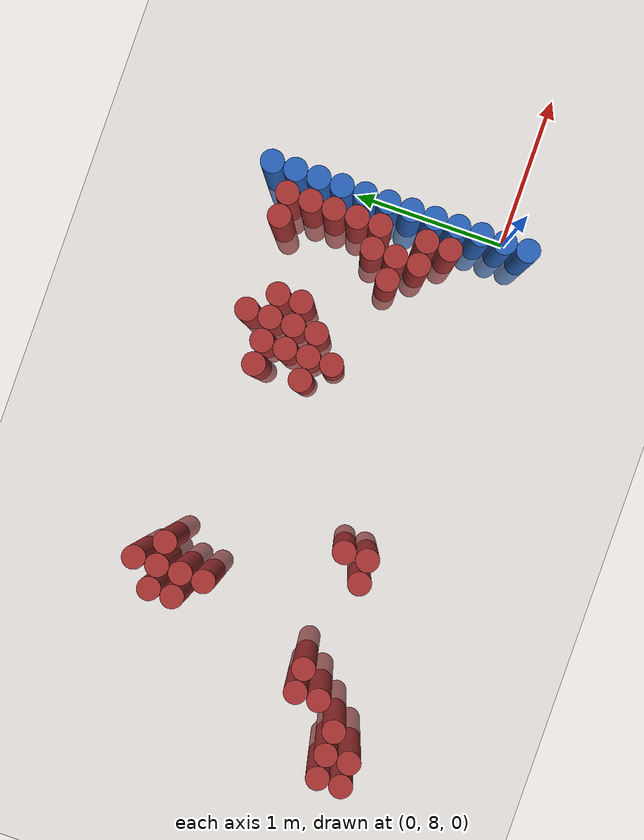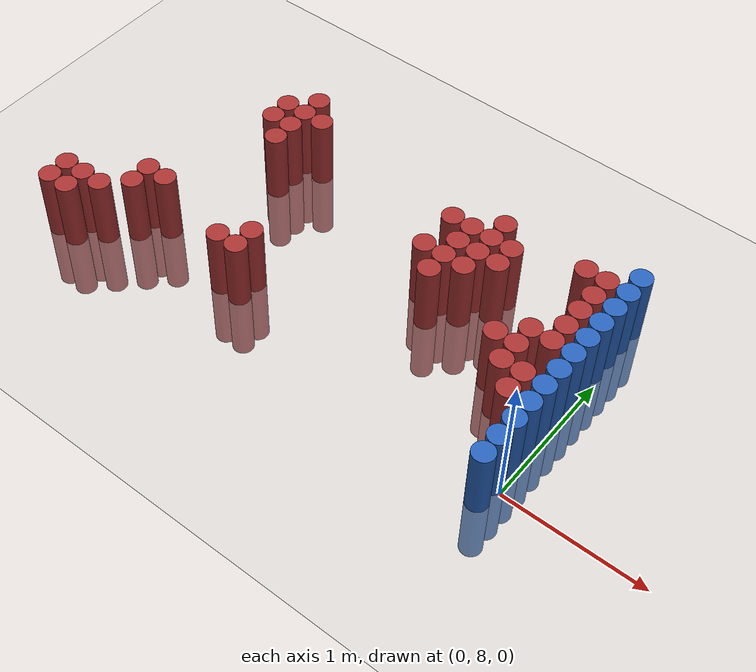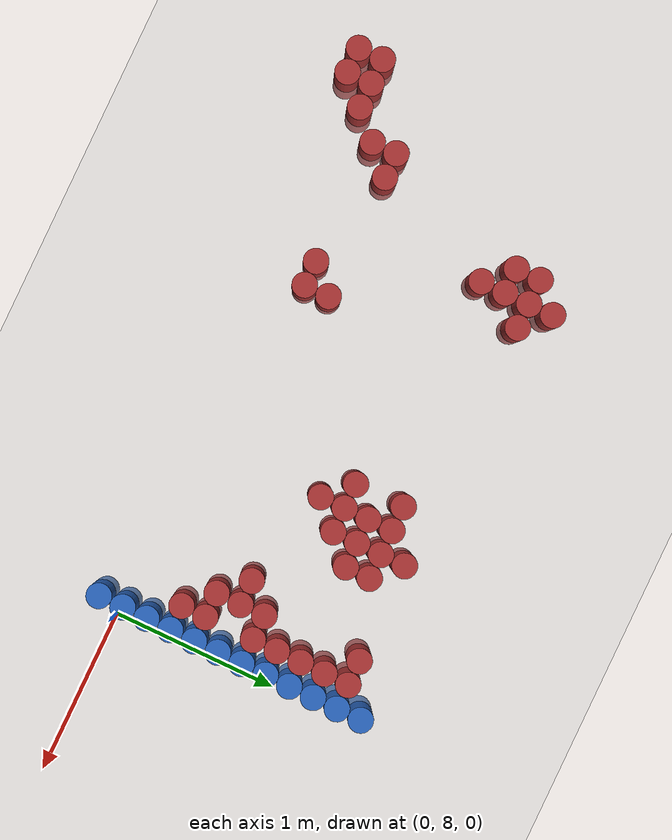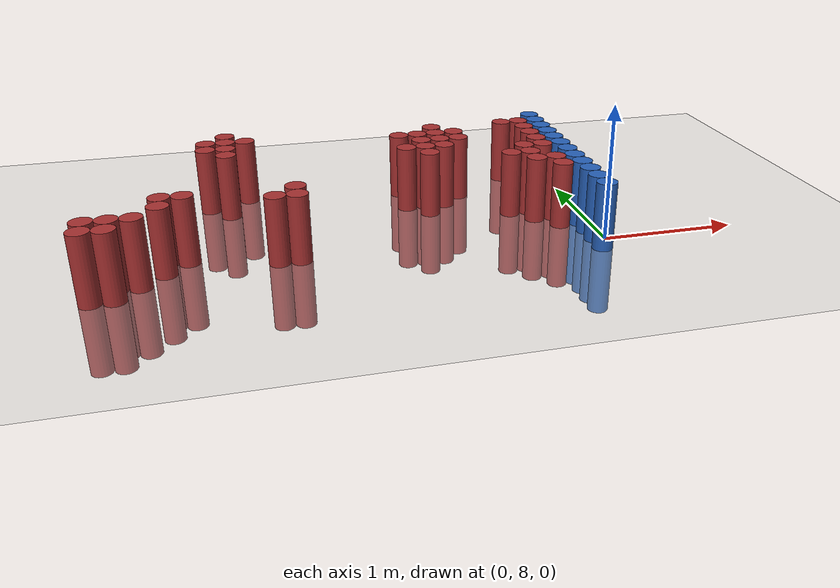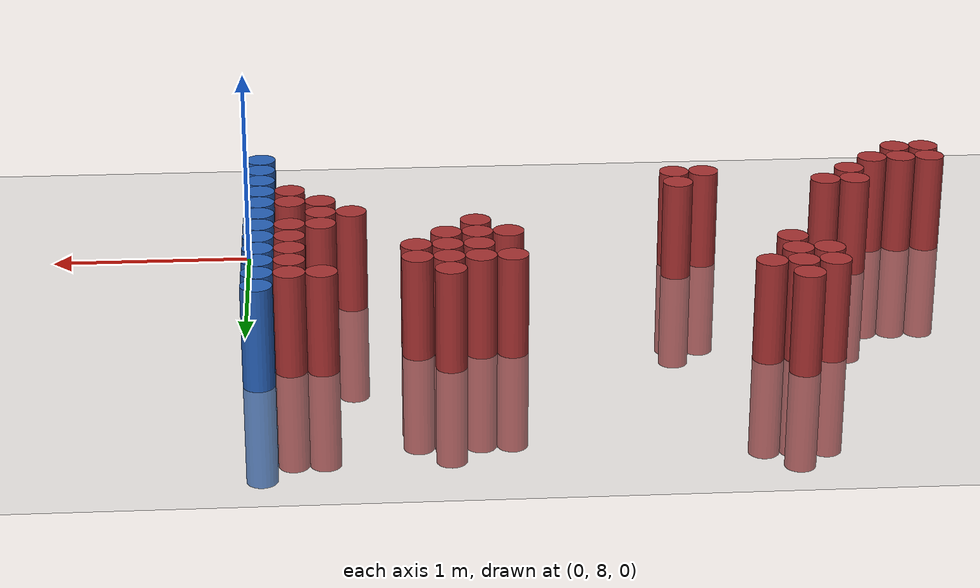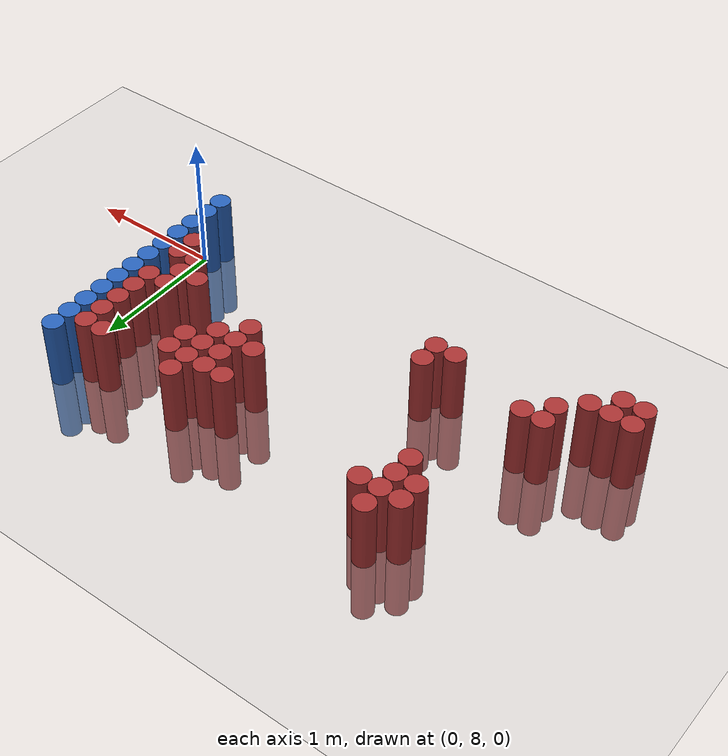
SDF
<sdf version="1.6">
 <world name="default">
  <model name="ground_plane">
   <static>1</static>
   <link name="link">
    <collision name="collision">
     <geometry><plane><normal>0 0 1</normal><size>100 100</size></plane></geometry>
     <surface><friction><ode><mu>100</mu><mu2>50</mu2></ode></friction></surface>
    </collision>
    <visual name="visual">
     <cast_shadows>0</cast_shadows>
     <geometry><plane><normal>0 0 1</normal><size>100 100</size></plane></geometry>
     <material>
      <script><uri>file://media/materials/scripts/gazebo.material</uri><name>Gazebo/Grey</name></script>
     </material>
    </visual>
   </link>
  </model>
  <model name="unit_cylinder_157">
   <static>1</static>
   <pose>-3.525000 7.875000 0.000000 0.000000 0.000000 0.000000</pose>
   <link name="link">
    <inertial>
     <mass>1</mass>
     <inertia><ixx>0.145833</ixx><ixy>0</ixy><ixz>0</ixz><iyy>0.145833</iyy><iyz>0</iyz><izz>0.125</izz></inertia>
    </inertial>
    <collision name="collision">
     <geometry><cylinder><radius>0.075000</radius><length>1</length></cylinder></geometry>
    </collision>
    <visual name="visual">
     <geometry><cylinder><radius>0.075000</radius><length>1</length></cylinder></geometry>
     <material>
      <ambient>0.648000 0.192000 0.192000 1</ambient>
      <diffuse>0.648000 0.192000 0.192000 1</diffuse>
     </material>
     <material>
      <script><name>Gazebo/Grey</name><uri>file://media/materials/scripts/gazebo.material</uri></script>
     </material>
    </visual>
   </link>
  </model>
  <model name="unit_cylinder_158">
   <static>1</static>
   <pose>-3.525000 8.025000 0.000000 0.000000 0.000000 0.000000</pose>
   <link name="link">
    <inertial>
     <mass>1</mass>
     <inertia><ixx>0.145833</ixx><ixy>0</ixy><ixz>0</ixz><iyy>0.145833</iyy><iyz>0</iyz><izz>0.125</izz></inertia>
    </inertial>
    <collision name="collision">
     <geometry><cylinder><radius>0.075000</radius><length>1</length></cylinder></geometry>
    </collision>
    <visual name="visual">
     <geometry><cylinder><radius>0.075000</radius><length>1</length></cylinder></geometry>
     <material>
      <ambient>0.648000 0.192000 0.192000 1</ambient>
      <diffuse>0.648000 0.192000 0.192000 1</diffuse>
     </material>
     <material>
      <script><name>Gazebo/Grey</name><uri>file://media/materials/scripts/gazebo.material</uri></script>
     </material>
    </visual>
   </link>
  </model>
  <model name="unit_cylinder_163">
   <static>1</static>
   <pose>-3.375000 7.875000 0.000000 0.000000 0.000000 0.000000</pose>
   <link name="link">
    <inertial>
     <mass>1</mass>
     <inertia><ixx>0.145833</ixx><ixy>0</ixy><ixz>0</ixz><iyy>0.145833</iyy><iyz>0</iyz><izz>0.125</izz></inertia>
    </inertial>
    <collision name="collision">
     <geometry><cylinder><radius>0.075000</radius><length>1</length></cylinder></geometry>
    </collision>
    <visual name="visual">
     <geometry><cylinder><radius>0.075000</radius><length>1</length></cylinder></geometry>
     <material>
      <ambient>0.648000 0.192000 0.192000 1</ambient>
      <diffuse>0.648000 0.192000 0.192000 1</diffuse>
     </material>
     <material>
      <script><name>Gazebo/Grey</name><uri>file://media/materials/scripts/gazebo.material</uri></script>
     </material>
    </visual>
   </link>
  </model>
  <model name="unit_cylinder_164">
   <static>1</static>
   <pose>-3.375000 8.025000 0.000000 0.000000 0.000000 0.000000</pose>
   <link name="link">
    <inertial>
     <mass>1</mass>
     <inertia><ixx>0.145833</ixx><ixy>0</ixy><ixz>0</ixz><iyy>0.145833</iyy><iyz>0</iyz><izz>0.125</izz></inertia>
    </inertial>
    <collision name="collision">
     <geometry><cylinder><radius>0.075000</radius><length>1</length></cylinder></geometry>
    </collision>
    <visual name="visual">
     <geometry><cylinder><radius>0.075000</radius><length>1</length></cylinder></geometry>
     <material>
      <ambient>0.648000 0.192000 0.192000 1</ambient>
      <diffuse>0.648000 0.192000 0.192000 1</diffuse>
     </material>
     <material>
      <script><name>Gazebo/Grey</name><uri>file://media/materials/scripts/gazebo.material</uri></script>
     </material>
    </visual>
   </link>
  </model>
  <model name="unit_cylinder_167">
   <static>1</static>
   <pose>-3.225000 8.025000 0.000000 0.000000 0.000000 0.000000</pose>
   <link name="link">
    <inertial>
     <mass>1</mass>
     <inertia><ixx>0.145833</ixx><ixy>0</ixy><ixz>0</ixz><iyy>0.145833</iyy><iyz>0</iyz><izz>0.125</izz></inertia>
    </inertial>
    <collision name="collision">
     <geometry><cylinder><radius>0.075000</radius><length>1</length></cylinder></geometry>
    </collision>
    <visual name="visual">
     <geometry><cylinder><radius>0.075000</radius><length>1</length></cylinder></geometry>
     <material>
      <ambient>0.648000 0.192000 0.192000 1</ambient>
      <diffuse>0.648000 0.192000 0.192000 1</diffuse>
     </material>
     <material>
      <script><name>Gazebo/Grey</name><uri>file://media/materials/scripts/gazebo.material</uri></script>
     </material>
    </visual>
   </link>
  </model>
  <model name="unit_cylinder_171">
   <static>1</static>
   <pose>-3.075000 8.175000 0.000000 0.000000 0.000000 0.000000</pose>
   <link name="link">
    <inertial>
     <mass>1</mass>
     <inertia><ixx>0.145833</ixx><ixy>0</ixy><ixz>0</ixz><iyy>0.145833</iyy><iyz>0</iyz><izz>0.125</izz></inertia>
    </inertial>
    <collision name="collision">
     <geometry><cylinder><radius>0.075000</radius><length>1</length></cylinder></geometry>
    </collision>
    <visual name="visual">
     <geometry><cylinder><radius>0.075000</radius><length>1</length></cylinder></geometry>
     <material>
      <ambient>0.648000 0.192000 0.192000 1</ambient>
      <diffuse>0.648000 0.192000 0.192000 1</diffuse>
     </material>
     <material>
      <script><name>Gazebo/Grey</name><uri>file://media/materials/scripts/gazebo.material</uri></script>
     </material>
    </visual>
   </link>
  </model>
  <model name="unit_cylinder_172">
   <static>1</static>
   <pose>-3.075000 8.325000 0.000000 0.000000 0.000000 0.000000</pose>
   <link name="link">
    <inertial>
     <mass>1</mass>
     <inertia><ixx>0.145833</ixx><ixy>0</ixy><ixz>0</ixz><iyy>0.145833</iyy><iyz>0</iyz><izz>0.125</izz></inertia>
    </inertial>
    <collision name="collision">
     <geometry><cylinder><radius>0.075000</radius><length>1</length></cylinder></geometry>
    </collision>
    <visual name="visual">
     <geometry><cylinder><radius>0.075000</radius><length>1</length></cylinder></geometry>
     <material>
      <ambient>0.648000 0.192000 0.192000 1</ambient>
      <diffuse>0.648000 0.192000 0.192000 1</diffuse>
     </material>
     <material>
      <script><name>Gazebo/Grey</name><uri>file://media/materials/scripts/gazebo.material</uri></script>
     </material>
    </visual>
   </link>
  </model>
  <model name="unit_cylinder_175">
   <static>1</static>
   <pose>-2.925000 8.325000 0.000000 0.000000 0.000000 0.000000</pose>
   <link name="link">
    <inertial>
     <mass>1</mass>
     <inertia><ixx>0.145833</ixx><ixy>0</ixy><ixz>0</ixz><iyy>0.145833</iyy><iyz>0</iyz><izz>0.125</izz></inertia>
    </inertial>
    <collision name="collision">
     <geometry><cylinder><radius>0.075000</radius><length>1</length></cylinder></geometry>
    </collision>
    <visual name="visual">
     <geometry><cylinder><radius>0.075000</radius><length>1</length></cylinder></geometry>
     <material>
      <ambient>0.648000 0.192000 0.192000 1</ambient>
      <diffuse>0.648000 0.192000 0.192000 1</diffuse>
     </material>
     <material>
      <script><name>Gazebo/Grey</name><uri>file://media/materials/scripts/gazebo.material</uri></script>
     </material>
    </visual>
   </link>
  </model>
  <model name="unit_cylinder_180">
   <static>1</static>
   <pose>-2.775000 9.225000 0.000000 0.000000 0.000000 0.000000</pose>
   <link name="link">
    <inertial>
     <mass>1</mass>
     <inertia><ixx>0.145833</ixx><ixy>0</ixy><ixz>0</ixz><iyy>0.145833</iyy><iyz>0</iyz><izz>0.125</izz></inertia>
    </inertial>
    <collision name="collision">
     <geometry><cylinder><radius>0.075000</radius><length>1</length></cylinder></geometry>
    </collision>
    <visual name="visual">
     <geometry><cylinder><radius>0.075000</radius><length>1</length></cylinder></geometry>
     <material>
      <ambient>0.648000 0.192000 0.192000 1</ambient>
      <diffuse>0.648000 0.192000 0.192000 1</diffuse>
     </material>
     <material>
      <script><name>Gazebo/Grey</name><uri>file://media/materials/scripts/gazebo.material</uri></script>
     </material>
    </visual>
   </link>
  </model>
  <model name="unit_cylinder_181">
   <static>1</static>
   <pose>-2.775000 9.375000 0.000000 0.000000 0.000000 0.000000</pose>
   <link name="link">
    <inertial>
     <mass>1</mass>
     <inertia><ixx>0.145833</ixx><ixy>0</ixy><ixz>0</ixz><iyy>0.145833</iyy><iyz>0</iyz><izz>0.125</izz></inertia>
    </inertial>
    <collision name="collision">
     <geometry><cylinder><radius>0.075000</radius><length>1</length></cylinder></geometry>
    </collision>
    <visual name="visual">
     <geometry><cylinder><radius>0.075000</radius><length>1</length></cylinder></geometry>
     <material>
      <ambient>0.648000 0.192000 0.192000 1</ambient>
      <diffuse>0.648000 0.192000 0.192000 1</diffuse>
     </material>
     <material>
      <script><name>Gazebo/Grey</name><uri>file://media/materials/scripts/gazebo.material</uri></script>
     </material>
    </visual>
   </link>
  </model>
  <model name="unit_cylinder_187">
   <static>1</static>
   <pose>-2.625000 9.075000 0.000000 0.000000 0.000000 0.000000</pose>
   <link name="link">
    <inertial>
     <mass>1</mass>
     <inertia><ixx>0.145833</ixx><ixy>0</ixy><ixz>0</ixz><iyy>0.145833</iyy><iyz>0</iyz><izz>0.125</izz></inertia>
    </inertial>
    <collision name="collision">
     <geometry><cylinder><radius>0.075000</radius><length>1</length></cylinder></geometry>
    </collision>
    <visual name="visual">
     <geometry><cylinder><radius>0.075000</radius><length>1</length></cylinder></geometry>
     <material>
      <ambient>0.648000 0.192000 0.192000 1</ambient>
      <diffuse>0.648000 0.192000 0.192000 1</diffuse>
     </material>
     <material>
      <script><name>Gazebo/Grey</name><uri>file://media/materials/scripts/gazebo.material</uri></script>
     </material>
    </visual>
   </link>
  </model>
  <model name="unit_cylinder_188">
   <static>1</static>
   <pose>-2.625000 9.225000 0.000000 0.000000 0.000000 0.000000</pose>
   <link name="link">
    <inertial>
     <mass>1</mass>
     <inertia><ixx>0.145833</ixx><ixy>0</ixy><ixz>0</ixz><iyy>0.145833</iyy><iyz>0</iyz><izz>0.125</izz></inertia>
    </inertial>
    <collision name="collision">
     <geometry><cylinder><radius>0.075000</radius><length>1</length></cylinder></geometry>
    </collision>
    <visual name="visual">
     <geometry><cylinder><radius>0.075000</radius><length>1</length></cylinder></geometry>
     <material>
      <ambient>0.648000 0.192000 0.192000 1</ambient>
      <diffuse>0.648000 0.192000 0.192000 1</diffuse>
     </material>
     <material>
      <script><name>Gazebo/Grey</name><uri>file://media/materials/scripts/gazebo.material</uri></script>
     </material>
    </visual>
   </link>
  </model>
  <model name="unit_cylinder_189">
   <static>1</static>
   <pose>-2.625000 9.375000 0.000000 0.000000 0.000000 0.000000</pose>
   <link name="link">
    <inertial>
     <mass>1</mass>
     <inertia><ixx>0.145833</ixx><ixy>0</ixy><ixz>0</ixz><iyy>0.145833</iyy><iyz>0</iyz><izz>0.125</izz></inertia>
    </inertial>
    <collision name="collision">
     <geometry><cylinder><radius>0.075000</radius><length>1</length></cylinder></geometry>
    </collision>
    <visual name="visual">
     <geometry><cylinder><radius>0.075000</radius><length>1</length></cylinder></geometry>
     <material>
      <ambient>0.648000 0.192000 0.192000 1</ambient>
      <diffuse>0.648000 0.192000 0.192000 1</diffuse>
     </material>
     <material>
      <script><name>Gazebo/Grey</name><uri>file://media/materials/scripts/gazebo.material</uri></script>
     </material>
    </visual>
   </link>
  </model>
  <model name="unit_cylinder_190">
   <static>1</static>
   <pose>-2.625000 9.525000 0.000000 0.000000 0.000000 0.000000</pose>
   <link name="link">
    <inertial>
     <mass>1</mass>
     <inertia><ixx>0.145833</ixx><ixy>0</ixy><ixz>0</ixz><iyy>0.145833</iyy><iyz>0</iyz><izz>0.125</izz></inertia>
    </inertial>
    <collision name="collision">
     <geometry><cylinder><radius>0.075000</radius><length>1</length></cylinder></geometry>
    </collision>
    <visual name="visual">
     <geometry><cylinder><radius>0.075000</radius><length>1</length></cylinder></geometry>
     <material>
      <ambient>0.648000 0.192000 0.192000 1</ambient>
      <diffuse>0.648000 0.192000 0.192000 1</diffuse>
     </material>
     <material>
      <script><name>Gazebo/Grey</name><uri>file://media/materials/scripts/gazebo.material</uri></script>
     </material>
    </visual>
   </link>
  </model>
  <model name="unit_cylinder_195">
   <static>1</static>
   <pose>-2.475000 9.375000 0.000000 0.000000 0.000000 0.000000</pose>
   <link name="link">
    <inertial>
     <mass>1</mass>
     <inertia><ixx>0.145833</ixx><ixy>0</ixy><ixz>0</ixz><iyy>0.145833</iyy><iyz>0</iyz><izz>0.125</izz></inertia>
    </inertial>
    <collision name="collision">
     <geometry><cylinder><radius>0.075000</radius><length>1</length></cylinder></geometry>
    </collision>
    <visual name="visual">
     <geometry><cylinder><radius>0.075000</radius><length>1</length></cylinder></geometry>
     <material>
      <ambient>0.648000 0.192000 0.192000 1</ambient>
      <diffuse>0.648000 0.192000 0.192000 1</diffuse>
     </material>
     <material>
      <script><name>Gazebo/Grey</name><uri>file://media/materials/scripts/gazebo.material</uri></script>
     </material>
    </visual>
   </link>
  </model>
  <model name="unit_cylinder_197">
   <static>1</static>
   <pose>-2.325000 8.175000 0.000000 0.000000 0.000000 0.000000</pose>
   <link name="link">
    <inertial>
     <mass>1</mass>
     <inertia><ixx>0.145833</ixx><ixy>0</ixy><ixz>0</ixz><iyy>0.145833</iyy><iyz>0</iyz><izz>0.125</izz></inertia>
    </inertial>
    <collision name="collision">
     <geometry><cylinder><radius>0.075000</radius><length>1</length></cylinder></geometry>
    </collision>
    <visual name="visual">
     <geometry><cylinder><radius>0.075000</radius><length>1</length></cylinder></geometry>
     <material>
      <ambient>0.648000 0.192000 0.192000 1</ambient>
      <diffuse>0.648000 0.192000 0.192000 1</diffuse>
     </material>
     <material>
      <script><name>Gazebo/Grey</name><uri>file://media/materials/scripts/gazebo.material</uri></script>
     </material>
    </visual>
   </link>
  </model>
  <model name="unit_cylinder_198">
   <static>1</static>
   <pose>-2.175000 8.175000 0.000000 0.000000 0.000000 0.000000</pose>
   <link name="link">
    <inertial>
     <mass>1</mass>
     <inertia><ixx>0.145833</ixx><ixy>0</ixy><ixz>0</ixz><iyy>0.145833</iyy><iyz>0</iyz><izz>0.125</izz></inertia>
    </inertial>
    <collision name="collision">
     <geometry><cylinder><radius>0.075000</radius><length>1</length></cylinder></geometry>
    </collision>
    <visual name="visual">
     <geometry><cylinder><radius>0.075000</radius><length>1</length></cylinder></geometry>
     <material>
      <ambient>0.648000 0.192000 0.192000 1</ambient>
      <diffuse>0.648000 0.192000 0.192000 1</diffuse>
     </material>
     <material>
      <script><name>Gazebo/Grey</name><uri>file://media/materials/scripts/gazebo.material</uri></script>
     </material>
    </visual>
   </link>
  </model>
  <model name="unit_cylinder_199">
   <static>1</static>
   <pose>-2.175000 8.325000 0.000000 0.000000 0.000000 0.000000</pose>
   <link name="link">
    <inertial>
     <mass>1</mass>
     <inertia><ixx>0.145833</ixx><ixy>0</ixy><ixz>0</ixz><iyy>0.145833</iyy><iyz>0</iyz><izz>0.125</izz></inertia>
    </inertial>
    <collision name="collision">
     <geometry><cylinder><radius>0.075000</radius><length>1</length></cylinder></geometry>
    </collision>
    <visual name="visual">
     <geometry><cylinder><radius>0.075000</radius><length>1</length></cylinder></geometry>
     <material>
      <ambient>0.648000 0.192000 0.192000 1</ambient>
      <diffuse>0.648000 0.192000 0.192000 1</diffuse>
     </material>
     <material>
      <script><name>Gazebo/Grey</name><uri>file://media/materials/scripts/gazebo.material</uri></script>
     </material>
    </visual>
   </link>
  </model>
  <model name="unit_cylinder_208">
   <static>1</static>
   <pose>-1.275000 8.925000 0.000000 0.000000 0.000000 0.000000</pose>
   <link name="link">
    <inertial>
     <mass>1</mass>
     <inertia><ixx>0.145833</ixx><ixy>0</ixy><ixz>0</ixz><iyy>0.145833</iyy><iyz>0</iyz><izz>0.125</izz></inertia>
    </inertial>
    <collision name="collision">
     <geometry><cylinder><radius>0.075000</radius><length>1</length></cylinder></geometry>
    </collision>
    <visual name="visual">
     <geometry><cylinder><radius>0.075000</radius><length>1</length></cylinder></geometry>
     <material>
      <ambient>0.648000 0.192000 0.192000 1</ambient>
      <diffuse>0.648000 0.192000 0.192000 1</diffuse>
     </material>
     <material>
      <script><name>Gazebo/Grey</name><uri>file://media/materials/scripts/gazebo.material</uri></script>
     </material>
    </visual>
   </link>
  </model>
  <model name="unit_cylinder_209">
   <static>1</static>
   <pose>-1.275000 9.225000 0.000000 0.000000 0.000000 0.000000</pose>
   <link name="link">
    <inertial>
     <mass>1</mass>
     <inertia><ixx>0.145833</ixx><ixy>0</ixy><ixz>0</ixz><iyy>0.145833</iyy><iyz>0</iyz><izz>0.125</izz></inertia>
    </inertial>
    <collision name="collision">
     <geometry><cylinder><radius>0.075000</radius><length>1</length></cylinder></geometry>
    </collision>
    <visual name="visual">
     <geometry><cylinder><radius>0.075000</radius><length>1</length></cylinder></geometry>
     <material>
      <ambient>0.648000 0.192000 0.192000 1</ambient>
      <diffuse>0.648000 0.192000 0.192000 1</diffuse>
     </material>
     <material>
      <script><name>Gazebo/Grey</name><uri>file://media/materials/scripts/gazebo.material</uri></script>
     </material>
    </visual>
   </link>
  </model>
  <model name="unit_cylinder_210">
   <static>1</static>
   <pose>-1.125000 8.775000 0.000000 0.000000 0.000000 0.000000</pose>
   <link name="link">
    <inertial>
     <mass>1</mass>
     <inertia><ixx>0.145833</ixx><ixy>0</ixy><ixz>0</ixz><iyy>0.145833</iyy><iyz>0</iyz><izz>0.125</izz></inertia>
    </inertial>
    <collision name="collision">
     <geometry><cylinder><radius>0.075000</radius><length>1</length></cylinder></geometry>
    </collision>
    <visual name="visual">
     <geometry><cylinder><radius>0.075000</radius><length>1</length></cylinder></geometry>
     <material>
      <ambient>0.648000 0.192000 0.192000 1</ambient>
      <diffuse>0.648000 0.192000 0.192000 1</diffuse>
     </material>
     <material>
      <script><name>Gazebo/Grey</name><uri>file://media/materials/scripts/gazebo.material</uri></script>
     </material>
    </visual>
   </link>
  </model>
  <model name="unit_cylinder_211">
   <static>1</static>
   <pose>-1.125000 8.925000 0.000000 0.000000 0.000000 0.000000</pose>
   <link name="link">
    <inertial>
     <mass>1</mass>
     <inertia><ixx>0.145833</ixx><ixy>0</ixy><ixz>0</ixz><iyy>0.145833</iyy><iyz>0</iyz><izz>0.125</izz></inertia>
    </inertial>
    <collision name="collision">
     <geometry><cylinder><radius>0.075000</radius><length>1</length></cylinder></geometry>
    </collision>
    <visual name="visual">
     <geometry><cylinder><radius>0.075000</radius><length>1</length></cylinder></geometry>
     <material>
      <ambient>0.648000 0.192000 0.192000 1</ambient>
      <diffuse>0.648000 0.192000 0.192000 1</diffuse>
     </material>
     <material>
      <script><name>Gazebo/Grey</name><uri>file://media/materials/scripts/gazebo.material</uri></script>
     </material>
    </visual>
   </link>
  </model>
  <model name="unit_cylinder_212">
   <static>1</static>
   <pose>-1.125000 9.075000 0.000000 0.000000 0.000000 0.000000</pose>
   <link name="link">
    <inertial>
     <mass>1</mass>
     <inertia><ixx>0.145833</ixx><ixy>0</ixy><ixz>0</ixz><iyy>0.145833</iyy><iyz>0</iyz><izz>0.125</izz></inertia>
    </inertial>
    <collision name="collision">
     <geometry><cylinder><radius>0.075000</radius><length>1</length></cylinder></geometry>
    </collision>
    <visual name="visual">
     <geometry><cylinder><radius>0.075000</radius><length>1</length></cylinder></geometry>
     <material>
      <ambient>0.648000 0.192000 0.192000 1</ambient>
      <diffuse>0.648000 0.192000 0.192000 1</diffuse>
     </material>
     <material>
      <script><name>Gazebo/Grey</name><uri>file://media/materials/scripts/gazebo.material</uri></script>
     </material>
    </visual>
   </link>
  </model>
  <model name="unit_cylinder_213">
   <static>1</static>
   <pose>-1.125000 9.225000 0.000000 0.000000 0.000000 0.000000</pose>
   <link name="link">
    <inertial>
     <mass>1</mass>
     <inertia><ixx>0.145833</ixx><ixy>0</ixy><ixz>0</ixz><iyy>0.145833</iyy><iyz>0</iyz><izz>0.125</izz></inertia>
    </inertial>
    <collision name="collision">
     <geometry><cylinder><radius>0.075000</radius><length>1</length></cylinder></geometry>
    </collision>
    <visual name="visual">
     <geometry><cylinder><radius>0.075000</radius><length>1</length></cylinder></geometry>
     <material>
      <ambient>0.648000 0.192000 0.192000 1</ambient>
      <diffuse>0.648000 0.192000 0.192000 1</diffuse>
     </material>
     <material>
      <script><name>Gazebo/Grey</name><uri>file://media/materials/scripts/gazebo.material</uri></script>
     </material>
    </visual>
   </link>
  </model>
  <model name="unit_cylinder_215">
   <static>1</static>
   <pose>-0.975000 8.925000 0.000000 0.000000 0.000000 0.000000</pose>
   <link name="link">
    <inertial>
     <mass>1</mass>
     <inertia><ixx>0.145833</ixx><ixy>0</ixy><ixz>0</ixz><iyy>0.145833</iyy><iyz>0</iyz><izz>0.125</izz></inertia>
    </inertial>
    <collision name="collision">
     <geometry><cylinder><radius>0.075000</radius><length>1</length></cylinder></geometry>
    </collision>
    <visual name="visual">
     <geometry><cylinder><radius>0.075000</radius><length>1</length></cylinder></geometry>
     <material>
      <ambient>0.648000 0.192000 0.192000 1</ambient>
      <diffuse>0.648000 0.192000 0.192000 1</diffuse>
     </material>
     <material>
      <script><name>Gazebo/Grey</name><uri>file://media/materials/scripts/gazebo.material</uri></script>
     </material>
    </visual>
   </link>
  </model>
  <model name="unit_cylinder_216">
   <static>1</static>
   <pose>-0.975000 9.075000 0.000000 0.000000 0.000000 0.000000</pose>
   <link name="link">
    <inertial>
     <mass>1</mass>
     <inertia><ixx>0.145833</ixx><ixy>0</ixy><ixz>0</ixz><iyy>0.145833</iyy><iyz>0</iyz><izz>0.125</izz></inertia>
    </inertial>
    <collision name="collision">
     <geometry><cylinder><radius>0.075000</radius><length>1</length></cylinder></geometry>
    </collision>
    <visual name="visual">
     <geometry><cylinder><radius>0.075000</radius><length>1</length></cylinder></geometry>
     <material>
      <ambient>0.648000 0.192000 0.192000 1</ambient>
      <diffuse>0.648000 0.192000 0.192000 1</diffuse>
     </material>
     <material>
      <script><name>Gazebo/Grey</name><uri>file://media/materials/scripts/gazebo.material</uri></script>
     </material>
    </visual>
   </link>
  </model>
  <model name="unit_cylinder_217">
   <static>1</static>
   <pose>-0.975000 9.225000 0.000000 0.000000 0.000000 0.000000</pose>
   <link name="link">
    <inertial>
     <mass>1</mass>
     <inertia><ixx>0.145833</ixx><ixy>0</ixy><ixz>0</ixz><iyy>0.145833</iyy><iyz>0</iyz><izz>0.125</izz></inertia>
    </inertial>
    <collision name="collision">
     <geometry><cylinder><radius>0.075000</radius><length>1</length></cylinder></geometry>
    </collision>
    <visual name="visual">
     <geometry><cylinder><radius>0.075000</radius><length>1</length></cylinder></geometry>
     <material>
      <ambient>0.648000 0.192000 0.192000 1</ambient>
      <diffuse>0.648000 0.192000 0.192000 1</diffuse>
     </material>
     <material>
      <script><name>Gazebo/Grey</name><uri>file://media/materials/scripts/gazebo.material</uri></script>
     </material>
    </visual>
   </link>
  </model>
  <model name="unit_cylinder_218">
   <static>1</static>
   <pose>-0.975000 9.375000 0.000000 0.000000 0.000000 0.000000</pose>
   <link name="link">
    <inertial>
     <mass>1</mass>
     <inertia><ixx>0.145833</ixx><ixy>0</ixy><ixz>0</ixz><iyy>0.145833</iyy><iyz>0</iyz><izz>0.125</izz></inertia>
    </inertial>
    <collision name="collision">
     <geometry><cylinder><radius>0.075000</radius><length>1</length></cylinder></geometry>
    </collision>
    <visual name="visual">
     <geometry><cylinder><radius>0.075000</radius><length>1</length></cylinder></geometry>
     <material>
      <ambient>0.648000 0.192000 0.192000 1</ambient>
      <diffuse>0.648000 0.192000 0.192000 1</diffuse>
     </material>
     <material>
      <script><name>Gazebo/Grey</name><uri>file://media/materials/scripts/gazebo.material</uri></script>
     </material>
    </visual>
   </link>
  </model>
  <model name="unit_cylinder_220">
   <static>1</static>
   <pose>-0.825000 9.075000 0.000000 0.000000 0.000000 0.000000</pose>
   <link name="link">
    <inertial>
     <mass>1</mass>
     <inertia><ixx>0.145833</ixx><ixy>0</ixy><ixz>0</ixz><iyy>0.145833</iyy><iyz>0</iyz><izz>0.125</izz></inertia>
    </inertial>
    <collision name="collision">
     <geometry><cylinder><radius>0.075000</radius><length>1</length></cylinder></geometry>
    </collision>
    <visual name="visual">
     <geometry><cylinder><radius>0.075000</radius><length>1</length></cylinder></geometry>
     <material>
      <ambient>0.648000 0.192000 0.192000 1</ambient>
      <diffuse>0.648000 0.192000 0.192000 1</diffuse>
     </material>
     <material>
      <script><name>Gazebo/Grey</name><uri>file://media/materials/scripts/gazebo.material</uri></script>
     </material>
    </visual>
   </link>
  </model>
  <model name="unit_cylinder_221">
   <static>1</static>
   <pose>-0.825000 9.225000 0.000000 0.000000 0.000000 0.000000</pose>
   <link name="link">
    <inertial>
     <mass>1</mass>
     <inertia><ixx>0.145833</ixx><ixy>0</ixy><ixz>0</ixz><iyy>0.145833</iyy><iyz>0</iyz><izz>0.125</izz></inertia>
    </inertial>
    <collision name="collision">
     <geometry><cylinder><radius>0.075000</radius><length>1</length></cylinder></geometry>
    </collision>
    <visual name="visual">
     <geometry><cylinder><radius>0.075000</radius><length>1</length></cylinder></geometry>
     <material>
      <ambient>0.648000 0.192000 0.192000 1</ambient>
      <diffuse>0.648000 0.192000 0.192000 1</diffuse>
     </material>
     <material>
      <script><name>Gazebo/Grey</name><uri>file://media/materials/scripts/gazebo.material</uri></script>
     </material>
    </visual>
   </link>
  </model>
  <model name="unit_cylinder_222">
   <static>1</static>
   <pose>-0.525000 8.625000 0.000000 0.000000 0.000000 0.000000</pose>
   <link name="link">
    <inertial>
     <mass>1</mass>
     <inertia><ixx>0.145833</ixx><ixy>0</ixy><ixz>0</ixz><iyy>0.145833</iyy><iyz>0</iyz><izz>0.125</izz></inertia>
    </inertial>
    <collision name="collision">
     <geometry><cylinder><radius>0.075000</radius><length>1</length></cylinder></geometry>
    </collision>
    <visual name="visual">
     <geometry><cylinder><radius>0.075000</radius><length>1</length></cylinder></geometry>
     <material>
      <ambient>0.648000 0.192000 0.192000 1</ambient>
      <diffuse>0.648000 0.192000 0.192000 1</diffuse>
     </material>
     <material>
      <script><name>Gazebo/Grey</name><uri>file://media/materials/scripts/gazebo.material</uri></script>
     </material>
    </visual>
   </link>
  </model>
  <model name="unit_cylinder_223">
   <static>1</static>
   <pose>-0.375000 8.475000 0.000000 0.000000 0.000000 0.000000</pose>
   <link name="link">
    <inertial>
     <mass>1</mass>
     <inertia><ixx>0.145833</ixx><ixy>0</ixy><ixz>0</ixz><iyy>0.145833</iyy><iyz>0</iyz><izz>0.125</izz></inertia>
    </inertial>
    <collision name="collision">
     <geometry><cylinder><radius>0.075000</radius><length>1</length></cylinder></geometry>
    </collision>
    <visual name="visual">
     <geometry><cylinder><radius>0.075000</radius><length>1</length></cylinder></geometry>
     <material>
      <ambient>0.648000 0.192000 0.192000 1</ambient>
      <diffuse>0.648000 0.192000 0.192000 1</diffuse>
     </material>
     <material>
      <script><name>Gazebo/Grey</name><uri>file://media/materials/scripts/gazebo.material</uri></script>
     </material>
    </visual>
   </link>
  </model>
  <model name="unit_cylinder_224">
   <static>1</static>
   <pose>-0.375000 8.625000 0.000000 0.000000 0.000000 0.000000</pose>
   <link name="link">
    <inertial>
     <mass>1</mass>
     <inertia><ixx>0.145833</ixx><ixy>0</ixy><ixz>0</ixz><iyy>0.145833</iyy><iyz>0</iyz><izz>0.125</izz></inertia>
    </inertial>
    <collision name="collision">
     <geometry><cylinder><radius>0.075000</radius><length>1</length></cylinder></geometry>
    </collision>
    <visual name="visual">
     <geometry><cylinder><radius>0.075000</radius><length>1</length></cylinder></geometry>
     <material>
      <ambient>0.648000 0.192000 0.192000 1</ambient>
      <diffuse>0.648000 0.192000 0.192000 1</diffuse>
     </material>
     <material>
      <script><name>Gazebo/Grey</name><uri>file://media/materials/scripts/gazebo.material</uri></script>
     </material>
    </visual>
   </link>
  </model>
  <model name="unit_cylinder_225">
   <static>1</static>
   <pose>-0.375000 8.775000 0.000000 0.000000 0.000000 0.000000</pose>
   <link name="link">
    <inertial>
     <mass>1</mass>
     <inertia><ixx>0.145833</ixx><ixy>0</ixy><ixz>0</ixz><iyy>0.145833</iyy><iyz>0</iyz><izz>0.125</izz></inertia>
    </inertial>
    <collision name="collision">
     <geometry><cylinder><radius>0.075000</radius><length>1</length></cylinder></geometry>
    </collision>
    <visual name="visual">
     <geometry><cylinder><radius>0.075000</radius><length>1</length></cylinder></geometry>
     <material>
      <ambient>0.648000 0.192000 0.192000 1</ambient>
      <diffuse>0.648000 0.192000 0.192000 1</diffuse>
     </material>
     <material>
      <script><name>Gazebo/Grey</name><uri>file://media/materials/scripts/gazebo.material</uri></script>
     </material>
    </visual>
   </link>
  </model>
  <model name="unit_cylinder_226">
   <static>1</static>
   <pose>-0.375000 9.375000 0.000000 0.000000 0.000000 0.000000</pose>
   <link name="link">
    <inertial>
     <mass>1</mass>
     <inertia><ixx>0.145833</ixx><ixy>0</ixy><ixz>0</ixz><iyy>0.145833</iyy><iyz>0</iyz><izz>0.125</izz></inertia>
    </inertial>
    <collision name="collision">
     <geometry><cylinder><radius>0.075000</radius><length>1</length></cylinder></geometry>
    </collision>
    <visual name="visual">
     <geometry><cylinder><radius>0.075000</radius><length>1</length></cylinder></geometry>
     <material>
      <ambient>0.648000 0.192000 0.192000 1</ambient>
      <diffuse>0.648000 0.192000 0.192000 1</diffuse>
     </material>
     <material>
      <script><name>Gazebo/Grey</name><uri>file://media/materials/scripts/gazebo.material</uri></script>
     </material>
    </visual>
   </link>
  </model>
  <model name="unit_cylinder_230">
   <static>1</static>
   <pose>-0.225000 8.325000 0.000000 0.000000 0.000000 0.000000</pose>
   <link name="link">
    <inertial>
     <mass>1</mass>
     <inertia><ixx>0.145833</ixx><ixy>0</ixy><ixz>0</ixz><iyy>0.145833</iyy><iyz>0</iyz><izz>0.125</izz></inertia>
    </inertial>
    <collision name="collision">
     <geometry><cylinder><radius>0.075000</radius><length>1</length></cylinder></geometry>
    </collision>
    <visual name="visual">
     <geometry><cylinder><radius>0.075000</radius><length>1</length></cylinder></geometry>
     <material>
      <ambient>0.648000 0.192000 0.192000 1</ambient>
      <diffuse>0.648000 0.192000 0.192000 1</diffuse>
     </material>
     <material>
      <script><name>Gazebo/Grey</name><uri>file://media/materials/scripts/gazebo.material</uri></script>
     </material>
    </visual>
   </link>
  </model>
  <model name="unit_cylinder_231">
   <static>1</static>
   <pose>-0.225000 8.475000 0.000000 0.000000 0.000000 0.000000</pose>
   <link name="link">
    <inertial>
     <mass>1</mass>
     <inertia><ixx>0.145833</ixx><ixy>0</ixy><ixz>0</ixz><iyy>0.145833</iyy><iyz>0</iyz><izz>0.125</izz></inertia>
    </inertial>
    <collision name="collision">
     <geometry><cylinder><radius>0.075000</radius><length>1</length></cylinder></geometry>
    </collision>
    <visual name="visual">
     <geometry><cylinder><radius>0.075000</radius><length>1</length></cylinder></geometry>
     <material>
      <ambient>0.648000 0.192000 0.192000 1</ambient>
      <diffuse>0.648000 0.192000 0.192000 1</diffuse>
     </material>
     <material>
      <script><name>Gazebo/Grey</name><uri>file://media/materials/scripts/gazebo.material</uri></script>
     </material>
    </visual>
   </link>
  </model>
  <model name="unit_cylinder_232">
   <static>1</static>
   <pose>-0.225000 8.775000 0.000000 0.000000 0.000000 0.000000</pose>
   <link name="link">
    <inertial>
     <mass>1</mass>
     <inertia><ixx>0.145833</ixx><ixy>0</ixy><ixz>0</ixz><iyy>0.145833</iyy><iyz>0</iyz><izz>0.125</izz></inertia>
    </inertial>
    <collision name="collision">
     <geometry><cylinder><radius>0.075000</radius><length>1</length></cylinder></geometry>
    </collision>
    <visual name="visual">
     <geometry><cylinder><radius>0.075000</radius><length>1</length></cylinder></geometry>
     <material>
      <ambient>0.648000 0.192000 0.192000 1</ambient>
      <diffuse>0.648000 0.192000 0.192000 1</diffuse>
     </material>
     <material>
      <script><name>Gazebo/Grey</name><uri>file://media/materials/scripts/gazebo.material</uri></script>
     </material>
    </visual>
   </link>
  </model>
  <model name="unit_cylinder_233">
   <static>1</static>
   <pose>-0.225000 8.925000 0.000000 0.000000 0.000000 0.000000</pose>
   <link name="link">
    <inertial>
     <mass>1</mass>
     <inertia><ixx>0.145833</ixx><ixy>0</ixy><ixz>0</ixz><iyy>0.145833</iyy><iyz>0</iyz><izz>0.125</izz></inertia>
    </inertial>
    <collision name="collision">
     <geometry><cylinder><radius>0.075000</radius><length>1</length></cylinder></geometry>
    </collision>
    <visual name="visual">
     <geometry><cylinder><radius>0.075000</radius><length>1</length></cylinder></geometry>
     <material>
      <ambient>0.648000 0.192000 0.192000 1</ambient>
      <diffuse>0.648000 0.192000 0.192000 1</diffuse>
     </material>
     <material>
      <script><name>Gazebo/Grey</name><uri>file://media/materials/scripts/gazebo.material</uri></script>
     </material>
    </visual>
   </link>
  </model>
  <model name="unit_cylinder_234">
   <static>1</static>
   <pose>-0.225000 9.075000 0.000000 0.000000 0.000000 0.000000</pose>
   <link name="link">
    <inertial>
     <mass>1</mass>
     <inertia><ixx>0.145833</ixx><ixy>0</ixy><ixz>0</ixz><iyy>0.145833</iyy><iyz>0</iyz><izz>0.125</izz></inertia>
    </inertial>
    <collision name="collision">
     <geometry><cylinder><radius>0.075000</radius><length>1</length></cylinder></geometry>
    </collision>
    <visual name="visual">
     <geometry><cylinder><radius>0.075000</radius><length>1</length></cylinder></geometry>
     <material>
      <ambient>0.648000 0.192000 0.192000 1</ambient>
      <diffuse>0.648000 0.192000 0.192000 1</diffuse>
     </material>
     <material>
      <script><name>Gazebo/Grey</name><uri>file://media/materials/scripts/gazebo.material</uri></script>
     </material>
    </visual>
   </link>
  </model>
  <model name="unit_cylinder_235">
   <static>1</static>
   <pose>-0.225000 9.225000 0.000000 0.000000 0.000000 0.000000</pose>
   <link name="link">
    <inertial>
     <mass>1</mass>
     <inertia><ixx>0.145833</ixx><ixy>0</ixy><ixz>0</ixz><iyy>0.145833</iyy><iyz>0</iyz><izz>0.125</izz></inertia>
    </inertial>
    <collision name="collision">
     <geometry><cylinder><radius>0.075000</radius><length>1</length></cylinder></geometry>
    </collision>
    <visual name="visual">
     <geometry><cylinder><radius>0.075000</radius><length>1</length></cylinder></geometry>
     <material>
      <ambient>0.648000 0.192000 0.192000 1</ambient>
      <diffuse>0.648000 0.192000 0.192000 1</diffuse>
     </material>
     <material>
      <script><name>Gazebo/Grey</name><uri>file://media/materials/scripts/gazebo.material</uri></script>
     </material>
    </visual>
   </link>
  </model>
  <model name="unit_cylinder_236">
   <static>1</static>
   <pose>-0.225000 9.375000 0.000000 0.000000 0.000000 0.000000</pose>
   <link name="link">
    <inertial>
     <mass>1</mass>
     <inertia><ixx>0.145833</ixx><ixy>0</ixy><ixz>0</ixz><iyy>0.145833</iyy><iyz>0</iyz><izz>0.125</izz></inertia>
    </inertial>
    <collision name="collision">
     <geometry><cylinder><radius>0.075000</radius><length>1</length></cylinder></geometry>
    </collision>
    <visual name="visual">
     <geometry><cylinder><radius>0.075000</radius><length>1</length></cylinder></geometry>
     <material>
      <ambient>0.648000 0.192000 0.192000 1</ambient>
      <diffuse>0.648000 0.192000 0.192000 1</diffuse>
     </material>
     <material>
      <script><name>Gazebo/Grey</name><uri>file://media/materials/scripts/gazebo.material</uri></script>
     </material>
    </visual>
   </link>
  </model>
  <model name="unit_cylinder_255">
   <static>1</static>
   <pose>-0.075000 7.875000 0.000000 0.000000 0.000000 0.000000</pose>
   <link name="link">
    <inertial>
     <mass>1</mass>
     <inertia><ixx>0.145833</ixx><ixy>0</ixy><ixz>0</ixz><iyy>0.145833</iyy><iyz>0</iyz><izz>0.125</izz></inertia>
    </inertial>
    <collision name="collision">
     <geometry><cylinder><radius>0.075000</radius><length>1</length></cylinder></geometry>
    </collision>
    <visual name="visual">
     <geometry><cylinder><radius>0.075000</radius><length>1</length></cylinder></geometry>
     <material>
      <ambient>0.152000 0.379000 0.720000 1</ambient>
      <diffuse>0.152000 0.379000 0.720000 1</diffuse>
     </material>
     <material>
      <script><name>Gazebo/Grey</name><uri>file://media/materials/scripts/gazebo.material</uri></script>
     </material>
    </visual>
   </link>
  </model>
  <model name="unit_cylinder_256">
   <static>1</static>
   <pose>-0.075000 8.025000 0.000000 0.000000 0.000000 0.000000</pose>
   <link name="link">
    <inertial>
     <mass>1</mass>
     <inertia><ixx>0.145833</ixx><ixy>0</ixy><ixz>0</ixz><iyy>0.145833</iyy><iyz>0</iyz><izz>0.125</izz></inertia>
    </inertial>
    <collision name="collision">
     <geometry><cylinder><radius>0.075000</radius><length>1</length></cylinder></geometry>
    </collision>
    <visual name="visual">
     <geometry><cylinder><radius>0.075000</radius><length>1</length></cylinder></geometry>
     <material>
      <ambient>0.152000 0.379000 0.720000 1</ambient>
      <diffuse>0.152000 0.379000 0.720000 1</diffuse>
     </material>
     <material>
      <script><name>Gazebo/Grey</name><uri>file://media/materials/scripts/gazebo.material</uri></script>
     </material>
    </visual>
   </link>
  </model>
  <model name="unit_cylinder_257">
   <static>1</static>
   <pose>-0.075000 8.175000 0.000000 0.000000 0.000000 0.000000</pose>
   <link name="link">
    <inertial>
     <mass>1</mass>
     <inertia><ixx>0.145833</ixx><ixy>0</ixy><ixz>0</ixz><iyy>0.145833</iyy><iyz>0</iyz><izz>0.125</izz></inertia>
    </inertial>
    <collision name="collision">
     <geometry><cylinder><radius>0.075000</radius><length>1</length></cylinder></geometry>
    </collision>
    <visual name="visual">
     <geometry><cylinder><radius>0.075000</radius><length>1</length></cylinder></geometry>
     <material>
      <ambient>0.152000 0.379000 0.720000 1</ambient>
      <diffuse>0.152000 0.379000 0.720000 1</diffuse>
     </material>
     <material>
      <script><name>Gazebo/Grey</name><uri>file://media/materials/scripts/gazebo.material</uri></script>
     </material>
    </visual>
   </link>
  </model>
  <model name="unit_cylinder_258">
   <static>1</static>
   <pose>-0.075000 8.325000 0.000000 0.000000 0.000000 0.000000</pose>
   <link name="link">
    <inertial>
     <mass>1</mass>
     <inertia><ixx>0.145833</ixx><ixy>0</ixy><ixz>0</ixz><iyy>0.145833</iyy><iyz>0</iyz><izz>0.125</izz></inertia>
    </inertial>
    <collision name="collision">
     <geometry><cylinder><radius>0.075000</radius><length>1</length></cylinder></geometry>
    </collision>
    <visual name="visual">
     <geometry><cylinder><radius>0.075000</radius><length>1</length></cylinder></geometry>
     <material>
      <ambient>0.152000 0.379000 0.720000 1</ambient>
      <diffuse>0.152000 0.379000 0.720000 1</diffuse>
     </material>
     <material>
      <script><name>Gazebo/Grey</name><uri>file://media/materials/scripts/gazebo.material</uri></script>
     </material>
    </visual>
   </link>
  </model>
  <model name="unit_cylinder_259">
   <static>1</static>
   <pose>-0.075000 8.475000 0.000000 0.000000 0.000000 0.000000</pose>
   <link name="link">
    <inertial>
     <mass>1</mass>
     <inertia><ixx>0.145833</ixx><ixy>0</ixy><ixz>0</ixz><iyy>0.145833</iyy><iyz>0</iyz><izz>0.125</izz></inertia>
    </inertial>
    <collision name="collision">
     <geometry><cylinder><radius>0.075000</radius><length>1</length></cylinder></geometry>
    </collision>
    <visual name="visual">
     <geometry><cylinder><radius>0.075000</radius><length>1</length></cylinder></geometry>
     <material>
      <ambient>0.152000 0.379000 0.720000 1</ambient>
      <diffuse>0.152000 0.379000 0.720000 1</diffuse>
     </material>
     <material>
      <script><name>Gazebo/Grey</name><uri>file://media/materials/scripts/gazebo.material</uri></script>
     </material>
    </visual>
   </link>
  </model>
  <model name="unit_cylinder_260">
   <static>1</static>
   <pose>-0.075000 8.625000 0.000000 0.000000 0.000000 0.000000</pose>
   <link name="link">
    <inertial>
     <mass>1</mass>
     <inertia><ixx>0.145833</ixx><ixy>0</ixy><ixz>0</ixz><iyy>0.145833</iyy><iyz>0</iyz><izz>0.125</izz></inertia>
    </inertial>
    <collision name="collision">
     <geometry><cylinder><radius>0.075000</radius><length>1</length></cylinder></geometry>
    </collision>
    <visual name="visual">
     <geometry><cylinder><radius>0.075000</radius><length>1</length></cylinder></geometry>
     <material>
      <ambient>0.152000 0.379000 0.720000 1</ambient>
      <diffuse>0.152000 0.379000 0.720000 1</diffuse>
     </material>
     <material>
      <script><name>Gazebo/Grey</name><uri>file://media/materials/scripts/gazebo.material</uri></script>
     </material>
    </visual>
   </link>
  </model>
  <model name="unit_cylinder_261">
   <static>1</static>
   <pose>-0.075000 8.775000 0.000000 0.000000 0.000000 0.000000</pose>
   <link name="link">
    <inertial>
     <mass>1</mass>
     <inertia><ixx>0.145833</ixx><ixy>0</ixy><ixz>0</ixz><iyy>0.145833</iyy><iyz>0</iyz><izz>0.125</izz></inertia>
    </inertial>
    <collision name="collision">
     <geometry><cylinder><radius>0.075000</radius><length>1</length></cylinder></geometry>
    </collision>
    <visual name="visual">
     <geometry><cylinder><radius>0.075000</radius><length>1</length></cylinder></geometry>
     <material>
      <ambient>0.152000 0.379000 0.720000 1</ambient>
      <diffuse>0.152000 0.379000 0.720000 1</diffuse>
     </material>
     <material>
      <script><name>Gazebo/Grey</name><uri>file://media/materials/scripts/gazebo.material</uri></script>
     </material>
    </visual>
   </link>
  </model>
  <model name="unit_cylinder_262">
   <static>1</static>
   <pose>-0.075000 8.925000 0.000000 0.000000 0.000000 0.000000</pose>
   <link name="link">
    <inertial>
     <mass>1</mass>
     <inertia><ixx>0.145833</ixx><ixy>0</ixy><ixz>0</ixz><iyy>0.145833</iyy><iyz>0</iyz><izz>0.125</izz></inertia>
    </inertial>
    <collision name="collision">
     <geometry><cylinder><radius>0.075000</radius><length>1</length></cylinder></geometry>
    </collision>
    <visual name="visual">
     <geometry><cylinder><radius>0.075000</radius><length>1</length></cylinder></geometry>
     <material>
      <ambient>0.152000 0.379000 0.720000 1</ambient>
      <diffuse>0.152000 0.379000 0.720000 1</diffuse>
     </material>
     <material>
      <script><name>Gazebo/Grey</name><uri>file://media/materials/scripts/gazebo.material</uri></script>
     </material>
    </visual>
   </link>
  </model>
  <model name="unit_cylinder_263">
   <static>1</static>
   <pose>-0.075000 9.075000 0.000000 0.000000 0.000000 0.000000</pose>
   <link name="link">
    <inertial>
     <mass>1</mass>
     <inertia><ixx>0.145833</ixx><ixy>0</ixy><ixz>0</ixz><iyy>0.145833</iyy><iyz>0</iyz><izz>0.125</izz></inertia>
    </inertial>
    <collision name="collision">
     <geometry><cylinder><radius>0.075000</radius><length>1</length></cylinder></geometry>
    </collision>
    <visual name="visual">
     <geometry><cylinder><radius>0.075000</radius><length>1</length></cylinder></geometry>
     <material>
      <ambient>0.152000 0.379000 0.720000 1</ambient>
      <diffuse>0.152000 0.379000 0.720000 1</diffuse>
     </material>
     <material>
      <script><name>Gazebo/Grey</name><uri>file://media/materials/scripts/gazebo.material</uri></script>
     </material>
    </visual>
   </link>
  </model>
  <model name="unit_cylinder_264">
   <static>1</static>
   <pose>-0.075000 9.225000 0.000000 0.000000 0.000000 0.000000</pose>
   <link name="link">
    <inertial>
     <mass>1</mass>
     <inertia><ixx>0.145833</ixx><ixy>0</ixy><ixz>0</ixz><iyy>0.145833</iyy><iyz>0</iyz><izz>0.125</izz></inertia>
    </inertial>
    <collision name="collision">
     <geometry><cylinder><radius>0.075000</radius><length>1</length></cylinder></geometry>
    </collision>
    <visual name="visual">
     <geometry><cylinder><radius>0.075000</radius><length>1</length></cylinder></geometry>
     <material>
      <ambient>0.152000 0.379000 0.720000 1</ambient>
      <diffuse>0.152000 0.379000 0.720000 1</diffuse>
     </material>
     <material>
      <script><name>Gazebo/Grey</name><uri>file://media/materials/scripts/gazebo.material</uri></script>
     </material>
    </visual>
   </link>
  </model>
  <model name="unit_cylinder_265">
   <static>1</static>
   <pose>-0.075000 9.375000 0.000000 0.000000 0.000000 0.000000</pose>
   <link name="link">
    <inertial>
     <mass>1</mass>
     <inertia><ixx>0.145833</ixx><ixy>0</ixy><ixz>0</ixz><iyy>0.145833</iyy><iyz>0</iyz><izz>0.125</izz></inertia>
    </inertial>
    <collision name="collision">
     <geometry><cylinder><radius>0.075000</radius><length>1</length></cylinder></geometry>
    </collision>
    <visual name="visual">
     <geometry><cylinder><radius>0.075000</radius><length>1</length></cylinder></geometry>
     <material>
      <ambient>0.152000 0.379000 0.720000 1</ambient>
      <diffuse>0.152000 0.379000 0.720000 1</diffuse>
     </material>
     <material>
      <script><name>Gazebo/Grey</name><uri>file://media/materials/scripts/gazebo.material</uri></script>
     </material>
    </visual>
   </link>
  </model>
  <model name="unit_cylinder_266">
   <static>1</static>
   <pose>-0.075000 9.525000 0.000000 0.000000 0.000000 0.000000</pose>
   <link name="link">
    <inertial>
     <mass>1</mass>
     <inertia><ixx>0.145833</ixx><ixy>0</ixy><ixz>0</ixz><iyy>0.145833</iyy><iyz>0</iyz><izz>0.125</izz></inertia>
    </inertial>
    <collision name="collision">
     <geometry><cylinder><radius>0.075000</radius><length>1</length></cylinder></geometry>
    </collision>
    <visual name="visual">
     <geometry><cylinder><radius>0.075000</radius><length>1</length></cylinder></geometry>
     <material>
      <ambient>0.152000 0.379000 0.720000 1</ambient>
      <diffuse>0.152000 0.379000 0.720000 1</diffuse>
     </material>
     <material>
      <script><name>Gazebo/Grey</name><uri>file://media/materials/scripts/gazebo.material</uri></script>
     </material>
    </visual>
   </link>
  </model>
 </world>
</sdf>
